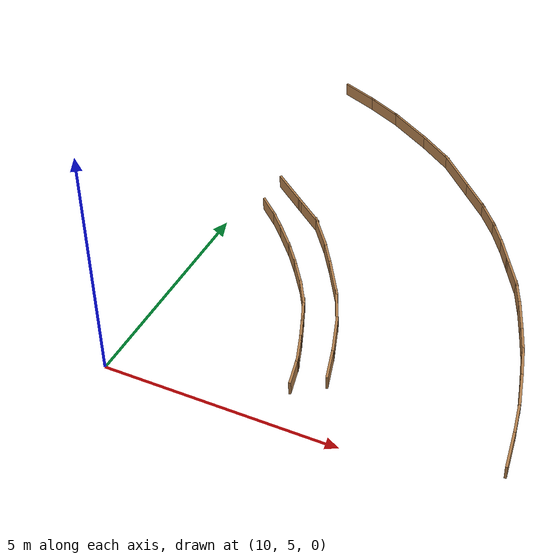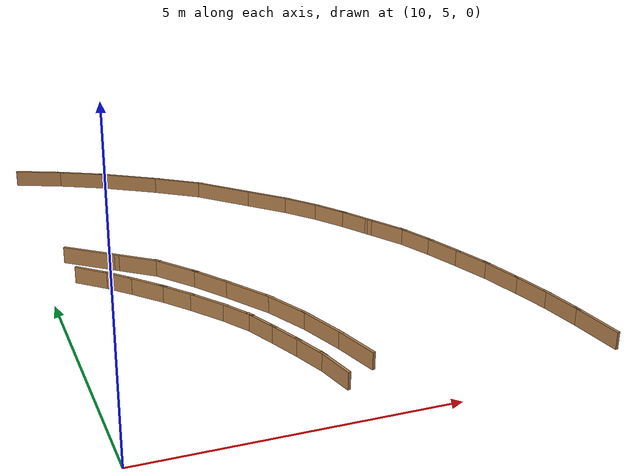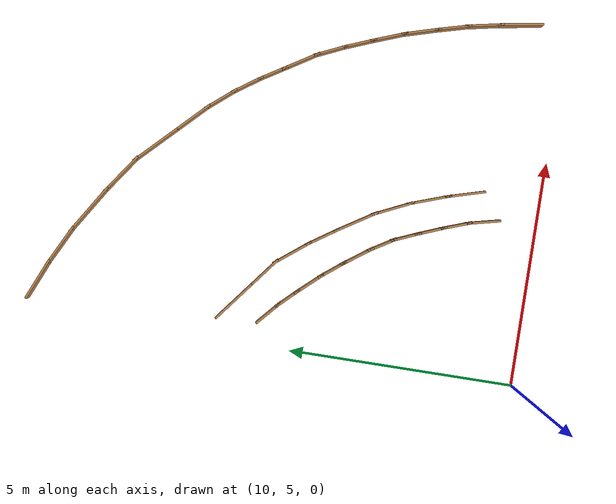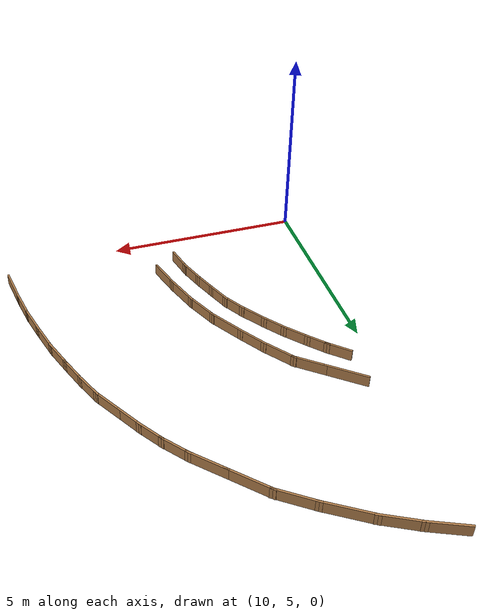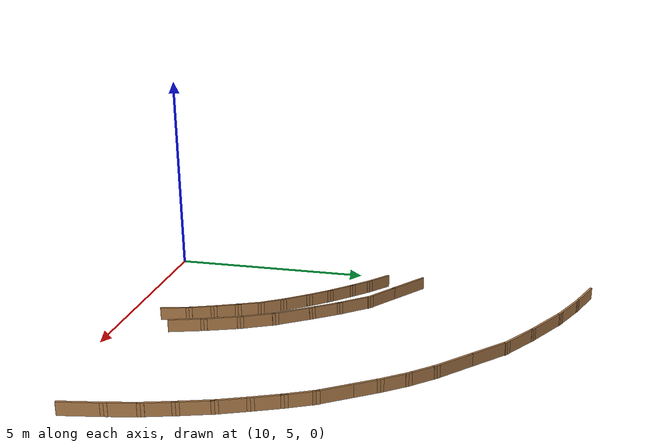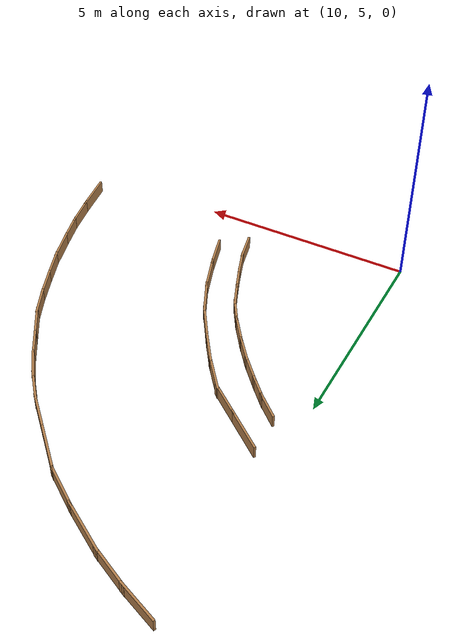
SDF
<sdf version="1.6">
 <model name="rover_racetrack">
  <pose>3.369 -0.8264 0 0 -0 0</pose>
  <link name="Wall_267">
   <collision name="Wall_267_Collision">
    <geometry><box><size>1.09163 0.05 0.3</size></box></geometry>
    <pose>0 0 0.15 0 -0 0</pose>
   </collision>
   <visual name="Wall_267_Visual">
    <pose>0 0 0.15 0 -0 0</pose>
    <geometry><box><size>1.09163 0.05 0.3</size></box></geometry>
    <material>
     <script><uri>file://media/materials/scripts/gazebo.material</uri><name>Gazebo/Wood</name></script>
     <ambient>0.435294 0.796078 0.67451 1</ambient>
    </material>
   </visual>
   <pose>7.55181 12.2014 0 0 0 -0.663203</pose>
  </link>
  <link name="Wall_268">
   <collision name="Wall_268_Collision">
    <geometry><box><size>0.943166 0.05 0.3</size></box></geometry>
    <pose>0 0 0.15 0 -0 0</pose>
   </collision>
   <visual name="Wall_268_Visual">
    <pose>0 0 0.15 0 -0 0</pose>
    <geometry><box><size>0.943166 0.05 0.3</size></box></geometry>
    <material>
     <script><uri>file://media/materials/scripts/gazebo.material</uri><name>Gazebo/Wood</name></script>
     <ambient>0.435294 0.796078 0.67451 1</ambient>
    </material>
   </visual>
   <pose>8.23587 11.6681 0 0 0 -0.661043</pose>
  </link>
  <link name="Wall_269">
   <collision name="Wall_269_Collision">
    <geometry><box><size>0.975716 0.05 0.3</size></box></geometry>
    <pose>0 0 0.15 0 -0 0</pose>
   </collision>
   <visual name="Wall_269_Visual">
    <pose>0 0 0.15 0 -0 0</pose>
    <geometry><box><size>0.975716 0.05 0.3</size></box></geometry>
    <material>
     <script><uri>file://media/materials/scripts/gazebo.material</uri><name>Gazebo/Wood</name></script>
     <ambient>0.435294 0.796078 0.67451 1</ambient>
    </material>
   </visual>
   <pose>8.80399 11.1 0 0 0 -0.904827</pose>
  </link>
  <link name="Wall_270">
   <collision name="Wall_270_Collision">
    <geometry><box><size>0.851042 0.05 0.3</size></box></geometry>
    <pose>0 0 0.15 0 -0 0</pose>
   </collision>
   <visual name="Wall_270_Visual">
    <pose>0 0 0.15 0 -0 0</pose>
    <geometry><box><size>0.851042 0.05 0.3</size></box></geometry>
    <material>
     <script><uri>file://media/materials/scripts/gazebo.material</uri><name>Gazebo/Wood</name></script>
     <ambient>0.435294 0.796078 0.67451 1</ambient>
    </material>
   </visual>
   <pose>9.25616 10.4855 0 0 0 -0.97362</pose>
  </link>
  <link name="Wall_271">
   <collision name="Wall_271_Collision">
    <geometry><box><size>1.05702 0.05 0.3</size></box></geometry>
    <pose>0 0 0.15 0 -0 0</pose>
   </collision>
   <visual name="Wall_271_Visual">
    <pose>0 0 0.15 0 -0 0</pose>
    <geometry><box><size>1.05702 0.05 0.3</size></box></geometry>
    <material>
     <script><uri>file://media/materials/scripts/gazebo.material</uri><name>Gazebo/Wood</name></script>
     <ambient>0.435294 0.796078 0.67451 1</ambient>
    </material>
   </visual>
   <pose>9.69674 9.81302 0 0 0 -1.00407</pose>
  </link>
  <link name="Wall_272">
   <collision name="Wall_272_Collision">
    <geometry><box><size>0.969506 0.05 0.3</size></box></geometry>
    <pose>0 0 0.15 0 -0 0</pose>
   </collision>
   <visual name="Wall_272_Visual">
    <pose>0 0 0.15 0 -0 0</pose>
    <geometry><box><size>0.969506 0.05 0.3</size></box></geometry>
    <material>
     <script><uri>file://media/materials/scripts/gazebo.material</uri><name>Gazebo/Wood</name></script>
     <ambient>0.435294 0.796078 0.67451 1</ambient>
    </material>
   </visual>
   <pose>10.1141 9.0594 0 0 0 -1.13246</pose>
  </link>
  <link name="Wall_273">
   <collision name="Wall_273_Collision">
    <geometry><box><size>0.98607 0.05 0.3</size></box></geometry>
    <pose>0 0 0.15 0 -0 0</pose>
   </collision>
   <visual name="Wall_273_Visual">
    <pose>0 0 0.15 0 -0 0</pose>
    <geometry><box><size>0.98607 0.05 0.3</size></box></geometry>
    <material>
     <script><uri>file://media/materials/scripts/gazebo.material</uri><name>Gazebo/Wood</name></script>
     <ambient>0.435294 0.796078 0.67451 1</ambient>
    </material>
   </visual>
   <pose>10.4272 8.29418 0 0 0 -1.2315</pose>
  </link>
  <link name="Wall_274">
   <collision name="Wall_274_Collision">
    <geometry><box><size>0.898522 0.05 0.3</size></box></geometry>
    <pose>0 0 0.15 0 -0 0</pose>
   </collision>
   <visual name="Wall_274_Visual">
    <pose>0 0 0.15 0 -0 0</pose>
    <geometry><box><size>0.898522 0.05 0.3</size></box></geometry>
    <material>
     <script><uri>file://media/materials/scripts/gazebo.material</uri><name>Gazebo/Wood</name></script>
     <ambient>0.435294 0.796078 0.67451 1</ambient>
    </material>
   </visual>
   <pose>10.6707 7.54056 0 0 0 -1.28824</pose>
  </link>
  <link name="Wall_386">
   <collision name="Wall_386_Collision">
    <geometry><box><size>0.745405 0.05 0.3</size></box></geometry>
    <pose>0 0 0.15 0 -0 0</pose>
   </collision>
   <visual name="Wall_386_Visual">
    <pose>0 0 0.15 0 -0 0</pose>
    <geometry><box><size>0.745405 0.05 0.3</size></box></geometry>
    <material>
     <script><uri>file://media/materials/scripts/gazebo.material</uri><name>Gazebo/Wood</name></script>
     <ambient>0.435294 0.796078 0.67451 1</ambient>
    </material>
   </visual>
   <pose>10.1304 7.04594 0 0 -0 1.80335</pose>
  </link>
  <link name="Wall_387">
   <collision name="Wall_387_Collision">
    <geometry><box><size>0.733574 0.05 0.3</size></box></geometry>
    <pose>0 0 0.15 0 -0 0</pose>
   </collision>
   <visual name="Wall_387_Visual">
    <pose>0 0 0.15 0 -0 0</pose>
    <geometry><box><size>0.733574 0.05 0.3</size></box></geometry>
    <material>
     <script><uri>file://media/materials/scripts/gazebo.material</uri><name>Gazebo/Wood</name></script>
     <ambient>0.435294 0.796078 0.67451 1</ambient>
    </material>
   </visual>
   <pose>9.96264 7.61007 0 0 -0 1.91734</pose>
  </link>
  <link name="Wall_388">
   <collision name="Wall_388_Collision">
    <geometry><box><size>0.724744 0.05 0.3</size></box></geometry>
    <pose>0 0 0.15 0 -0 0</pose>
   </collision>
   <visual name="Wall_388_Visual">
    <pose>0 0 0.15 0 -0 0</pose>
    <geometry><box><size>0.724744 0.05 0.3</size></box></geometry>
    <material>
     <script><uri>file://media/materials/scripts/gazebo.material</uri><name>Gazebo/Wood</name></script>
     <ambient>0.435294 0.796078 0.67451 1</ambient>
    </material>
   </visual>
   <pose>9.75681 8.15133 0 0 -0 1.9513</pose>
  </link>
  <link name="Wall_389">
   <collision name="Wall_389_Collision">
    <geometry><box><size>0.696549 0.05 0.3</size></box></geometry>
    <pose>0 0 0.15 0 -0 0</pose>
   </collision>
   <visual name="Wall_389_Visual">
    <pose>0 0 0.15 0 -0 0</pose>
    <geometry><box><size>0.696549 0.05 0.3</size></box></geometry>
    <material>
     <script><uri>file://media/materials/scripts/gazebo.material</uri><name>Gazebo/Wood</name></script>
     <ambient>0.435294 0.796078 0.67451 1</ambient>
    </material>
   </visual>
   <pose>9.54335 8.66972 0 0 -0 1.97202</pose>
  </link>
  <link name="Wall_390">
   <collision name="Wall_390_Collision">
    <geometry><box><size>0.704362 0.05 0.3</size></box></geometry>
    <pose>0 0 0.15 0 -0 0</pose>
   </collision>
   <visual name="Wall_390_Visual">
    <pose>0 0 0.15 0 -0 0</pose>
    <geometry><box><size>0.704362 0.05 0.3</size></box></geometry>
    <material>
     <script><uri>file://media/materials/scripts/gazebo.material</uri><name>Gazebo/Wood</name></script>
     <ambient>0.435294 0.796078 0.67451 1</ambient>
    </material>
   </visual>
   <pose>9.29178 9.15762 0 0 -0 2.12065</pose>
  </link>
  <link name="Wall_391">
   <collision name="Wall_391_Collision">
    <geometry><box><size>0.827066 0.05 0.3</size></box></geometry>
    <pose>0 0 0.15 0 -0 0</pose>
   </collision>
   <visual name="Wall_391_Visual">
    <pose>0 0 0.15 0 -0 0</pose>
    <geometry><box><size>0.827066 0.05 0.3</size></box></geometry>
    <material>
     <script><uri>file://media/materials/scripts/gazebo.material</uri><name>Gazebo/Wood</name></script>
     <ambient>0.435294 0.796078 0.67451 1</ambient>
    </material>
   </visual>
   <pose>8.94873 9.66839 0 0 -0 2.19628</pose>
  </link>
  <link name="Wall_392">
   <collision name="Wall_392_Collision">
    <geometry><box><size>0.714336 0.05 0.3</size></box></geometry>
    <pose>0 0 0.15 0 -0 0</pose>
   </collision>
   <visual name="Wall_392_Visual">
    <pose>0 0 0.15 0 -0 0</pose>
    <geometry><box><size>0.714336 0.05 0.3</size></box></geometry>
    <material>
     <script><uri>file://media/materials/scripts/gazebo.material</uri><name>Gazebo/Wood</name></script>
     <ambient>0.435294 0.796078 0.67451 1</ambient>
    </material>
   </visual>
   <pose>8.57518 10.1639 0 0 -0 2.24132</pose>
  </link>
  <link name="Wall_393">
   <collision name="Wall_393_Collision">
    <geometry><box><size>0.786906 0.05 0.3</size></box></geometry>
    <pose>0 0 0.15 0 -0 0</pose>
   </collision>
   <visual name="Wall_393_Visual">
    <pose>0 0 0.15 0 -0 0</pose>
    <geometry><box><size>0.786906 0.05 0.3</size></box></geometry>
    <material>
     <script><uri>file://media/materials/scripts/gazebo.material</uri><name>Gazebo/Wood</name></script>
     <ambient>0.435294 0.796078 0.67451 1</ambient>
    </material>
   </visual>
   <pose>8.18639 10.6213 0 0 -0 2.30539</pose>
  </link>
  <link name="Wall_395">
   <collision name="Wall_395_Collision">
    <geometry><box><size>0.656826 0.05 0.3</size></box></geometry>
    <pose>0 0 0.15 0 -0 0</pose>
   </collision>
   <visual name="Wall_395_Visual">
    <pose>0 0 0.15 0 -0 0</pose>
    <geometry><box><size>0.656826 0.05 0.3</size></box></geometry>
    <material>
     <script><uri>file://media/materials/scripts/gazebo.material</uri><name>Gazebo/Wood</name></script>
     <ambient>0.435294 0.796078 0.67451 1</ambient>
    </material>
   </visual>
   <pose>7.7976 11.0406 0 0 -0 2.33492</pose>
  </link>
  <link name="Wall_396">
   <collision name="Wall_396_Collision">
    <geometry><box><size>0.700786 0.05 0.3</size></box></geometry>
    <pose>0 0 0.15 0 -0 0</pose>
   </collision>
   <visual name="Wall_396_Visual">
    <pose>0 0 0.15 0 -0 0</pose>
    <geometry><box><size>0.700786 0.05 0.3</size></box></geometry>
    <material>
     <script><uri>file://media/materials/scripts/gazebo.material</uri><name>Gazebo/Wood</name></script>
     <ambient>0.435294 0.796078 0.67451 1</ambient>
    </material>
   </visual>
   <pose>7.41643 11.4065 0 0 -0 2.41495</pose>
  </link>
  <link name="Wall_49">
   <collision name="Wall_49_Collision">
    <geometry><box><size>1.00163 0.05 0.3</size></box></geometry>
    <pose>0 0 0.15 0 -0 0</pose>
   </collision>
   <visual name="Wall_49_Visual">
    <pose>0 0 0.15 0 -0 0</pose>
    <geometry><box><size>1.00163 0.05 0.3</size></box></geometry>
    <material>
     <script><uri>file://media/materials/scripts/gazebo.material</uri><name>Gazebo/Wood</name></script>
     <ambient>0.435294 0.796078 0.67451 1</ambient>
    </material>
   </visual>
   <pose>7.36972 16.5339 0 0 0 -0.399515</pose>
  </link>
  <link name="Wall_50">
   <collision name="Wall_50_Collision">
    <geometry><box><size>1.04666 0.05 0.3</size></box></geometry>
    <pose>0 0 0.15 0 -0 0</pose>
   </collision>
   <visual name="Wall_50_Visual">
    <pose>0 0 0.15 0 -0 0</pose>
    <geometry><box><size>1.04666 0.05 0.3</size></box></geometry>
    <material>
     <script><uri>file://media/materials/scripts/gazebo.material</uri><name>Gazebo/Wood</name></script>
     <ambient>0.435294 0.796078 0.67451 1</ambient>
    </material>
   </visual>
   <pose>8.163 16.1678 0 0 0 -0.463648</pose>
  </link>
  <link name="Wall_51">
   <collision name="Wall_51_Collision">
    <geometry><box><size>1.30135 0.05 0.3</size></box></geometry>
    <pose>0 0 0.15 0 -0 0</pose>
   </collision>
   <visual name="Wall_51_Visual">
    <pose>0 0 0.15 0 -0 0</pose>
    <geometry><box><size>1.30135 0.05 0.3</size></box></geometry>
    <material>
     <script><uri>file://media/materials/scripts/gazebo.material</uri><name>Gazebo/Wood</name></script>
     <ambient>0.435294 0.796078 0.67451 1</ambient>
    </material>
   </visual>
   <pose>9.05217 15.6622 0 0 0 -0.558599</pose>
  </link>
  <link name="Wall_52">
   <collision name="Wall_52_Collision">
    <geometry><box><size>1.08841 0.05 0.3</size></box></geometry>
    <pose>0 0 0.15 0 -0 0</pose>
   </collision>
   <visual name="Wall_52_Visual">
    <pose>0 0 0.15 0 -0 0</pose>
    <geometry><box><size>1.08841 0.05 0.3</size></box></geometry>
    <material>
     <script><uri>file://media/materials/scripts/gazebo.material</uri><name>Gazebo/Wood</name></script>
     <ambient>0.435294 0.796078 0.67451 1</ambient>
    </material>
   </visual>
   <pose>9.92391 15.0868 0 0 0 -0.61377</pose>
  </link>
  <link name="Wall_53">
   <collision name="Wall_53_Collision">
    <geometry><box><size>1.21023 0.05 0.3</size></box></geometry>
    <pose>0 0 0.15 0 -0 0</pose>
   </collision>
   <visual name="Wall_53_Visual">
    <pose>0 0 0.15 0 -0 0</pose>
    <geometry><box><size>1.21023 0.05 0.3</size></box></geometry>
    <material>
     <script><uri>file://media/materials/scripts/gazebo.material</uri><name>Gazebo/Wood</name></script>
     <ambient>0.435294 0.796078 0.67451 1</ambient>
    </material>
   </visual>
   <pose>10.6823 14.4417 0 0 0 -0.785398</pose>
  </link>
  <link name="Wall_54">
   <collision name="Wall_54_Collision">
    <geometry><box><size>1.03763 0.05 0.3</size></box></geometry>
    <pose>0 0 0.15 0 -0 0</pose>
   </collision>
   <visual name="Wall_54_Visual">
    <pose>0 0 0.15 0 -0 0</pose>
    <geometry><box><size>1.03763 0.05 0.3</size></box></geometry>
    <material>
     <script><uri>file://media/materials/scripts/gazebo.material</uri><name>Gazebo/Wood</name></script>
     <ambient>0.435294 0.796078 0.67451 1</ambient>
    </material>
   </visual>
   <pose>11.371 13.7531 0 0 0 -0.785398</pose>
  </link>
  <link name="Wall_56">
   <collision name="Wall_56_Collision">
    <geometry><box><size>0.830849 0.05 0.3</size></box></geometry>
    <pose>0 0 0.15 0 -0 0</pose>
   </collision>
   <visual name="Wall_56_Visual">
    <pose>0 0 0.15 0 -0 0</pose>
    <geometry><box><size>0.830849 0.05 0.3</size></box></geometry>
    <material>
     <script><uri>file://media/materials/scripts/gazebo.material</uri><name>Gazebo/Wood</name></script>
     <ambient>0.435294 0.796078 0.67451 1</ambient>
    </material>
   </visual>
   <pose>11.9028 13.1777 0 0 0 -0.876058</pose>
  </link>
  <link name="Wall_57">
   <collision name="Wall_57_Collision">
    <geometry><box><size>0.788455 0.05 0.3</size></box></geometry>
    <pose>0 0 0.15 0 -0 0</pose>
   </collision>
   <visual name="Wall_57_Visual">
    <pose>0 0 0.15 0 -0 0</pose>
    <geometry><box><size>0.788455 0.05 0.3</size></box></geometry>
    <material>
     <script><uri>file://media/materials/scripts/gazebo.material</uri><name>Gazebo/Wood</name></script>
     <ambient>0.435294 0.796078 0.67451 1</ambient>
    </material>
   </visual>
   <pose>12.3038 12.6547 0 0 0 -0.96007</pose>
  </link>
  <link name="Wall_58">
   <collision name="Wall_58_Collision">
    <geometry><box><size>0.745085 0.05 0.3</size></box></geometry>
    <pose>0 0 0.15 0 -0 0</pose>
   </collision>
   <visual name="Wall_58_Visual">
    <pose>0 0 0.15 0 -0 0</pose>
    <geometry><box><size>0.745085 0.05 0.3</size></box></geometry>
    <material>
     <script><uri>file://media/materials/scripts/gazebo.material</uri><name>Gazebo/Wood</name></script>
     <ambient>0.435294 0.796078 0.67451 1</ambient>
    </material>
   </visual>
   <pose>12.6437 12.1403 0 0 0 -1.0153</pose>
  </link>
  <link name="Wall_59">
   <collision name="Wall_59_Collision">
    <geometry><box><size>0.909564 0.05 0.3</size></box></geometry>
    <pose>0 0 0.15 0 -0 0</pose>
   </collision>
   <visual name="Wall_59_Visual">
    <pose>0 0 0.15 0 -0 0</pose>
    <geometry><box><size>0.909564 0.05 0.3</size></box></geometry>
    <material>
     <script><uri>file://media/materials/scripts/gazebo.material</uri><name>Gazebo/Wood</name></script>
     <ambient>0.435294 0.796078 0.67451 1</ambient>
    </material>
   </visual>
   <pose>13.0011 11.565 0 0 0 -1.01463</pose>
  </link>
  <link name="Wall_60">
   <collision name="Wall_60_Collision">
    <geometry><box><size>0.781995 0.05 0.3</size></box></geometry>
    <pose>0 0 0.15 0 -0 0</pose>
   </collision>
   <visual name="Wall_60_Visual">
    <pose>0 0 0.15 0 -0 0</pose>
    <geometry><box><size>0.781995 0.05 0.3</size></box></geometry>
    <material>
     <script><uri>file://media/materials/scripts/gazebo.material</uri><name>Gazebo/Wood</name></script>
     <ambient>0.435294 0.796078 0.67451 1</ambient>
    </material>
   </visual>
   <pose>13.3324 10.9548 0 0 0 -1.14417</pose>
  </link>
  <link name="Wall_61">
   <collision name="Wall_61_Collision">
    <geometry><box><size>0.807223 0.05 0.3</size></box></geometry>
    <pose>0 0 0.15 0 -0 0</pose>
   </collision>
   <visual name="Wall_61_Visual">
    <pose>0 0 0.15 0 -0 0</pose>
    <geometry><box><size>0.807223 0.05 0.3</size></box></geometry>
    <material>
     <script><uri>file://media/materials/scripts/gazebo.material</uri><name>Gazebo/Wood</name></script>
     <ambient>0.435294 0.796078 0.67451 1</ambient>
    </material>
   </visual>
   <pose>13.5852 10.362 0 0 0 -1.19029</pose>
  </link>
  <link name="Wall_62">
   <collision name="Wall_62_Collision">
    <geometry><box><size>0.839721 0.05 0.3</size></box></geometry>
    <pose>0 0 0.15 0 -0 0</pose>
   </collision>
   <visual name="Wall_62_Visual">
    <pose>0 0 0.15 0 -0 0</pose>
    <geometry><box><size>0.839721 0.05 0.3</size></box></geometry>
    <material>
     <script><uri>file://media/materials/scripts/gazebo.material</uri><name>Gazebo/Wood</name></script>
     <ambient>0.435294 0.796078 0.67451 1</ambient>
    </material>
   </visual>
   <pose>13.8293 9.73434 0 0 0 -1.20907</pose>
  </link>
  <link name="Wall_63">
   <collision name="Wall_63_Collision">
    <geometry><box><size>0.894813 0.05 0.3</size></box></geometry>
    <pose>0 0 0.15 0 -0 0</pose>
   </collision>
   <visual name="Wall_63_Visual">
    <pose>0 0 0.15 0 -0 0</pose>
    <geometry><box><size>0.894813 0.05 0.3</size></box></geometry>
    <material>
     <script><uri>file://media/materials/scripts/gazebo.material</uri><name>Gazebo/Wood</name></script>
     <ambient>0.435294 0.796078 0.67451 1</ambient>
    </material>
   </visual>
   <pose>14.0559 9.05439 0 0 0 -1.28607</pose>
  </link>
  <link name="Wall_65">
   <collision name="Wall_65_Collision">
    <geometry><box><size>0.818231 0.05 0.3</size></box></geometry>
    <pose>0 0 0.15 0 -0 0</pose>
   </collision>
   <visual name="Wall_65_Visual">
    <pose>0 0 0.15 0 -0 0</pose>
    <geometry><box><size>0.818231 0.05 0.3</size></box></geometry>
    <material>
     <script><uri>file://media/materials/scripts/gazebo.material</uri><name>Gazebo/Wood</name></script>
     <ambient>0.435294 0.796078 0.67451 1</ambient>
    </material>
   </visual>
   <pose>14.2477 8.37443 0 0 0 -1.30683</pose>
  </link>
  <link name="Wall_66">
   <collision name="Wall_66_Collision">
    <geometry><box><size>0.861202 0.05 0.3</size></box></geometry>
    <pose>0 0 0.15 0 -0 0</pose>
   </collision>
   <visual name="Wall_66_Visual">
    <pose>0 0 0.15 0 -0 0</pose>
    <geometry><box><size>0.861202 0.05 0.3</size></box></geometry>
    <material>
     <script><uri>file://media/materials/scripts/gazebo.material</uri><name>Gazebo/Wood</name></script>
     <ambient>0.435294 0.796078 0.67451 1</ambient>
    </material>
   </visual>
   <pose>14.4046 7.70319 0 0 0 -1.3734</pose>
  </link>
  <link name="Wall_67">
   <collision name="Wall_67_Collision">
    <geometry><box><size>1.01561 0.05 0.3</size></box></geometry>
    <pose>0 0 0.15 0 -0 0</pose>
   </collision>
   <visual name="Wall_67_Visual">
    <pose>0 0 0.15 0 -0 0</pose>
    <geometry><box><size>1.01561 0.05 0.3</size></box></geometry>
    <material>
     <script><uri>file://media/materials/scripts/gazebo.material</uri><name>Gazebo/Wood</name></script>
     <ambient>0.435294 0.796078 0.67451 1</ambient>
    </material>
   </visual>
   <pose>14.5441 6.92735 0 0 0 -1.40896</pose>
  </link>
  <static>1</static>
 </model>
</sdf>
